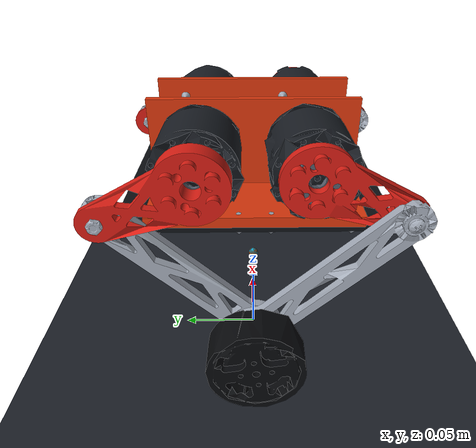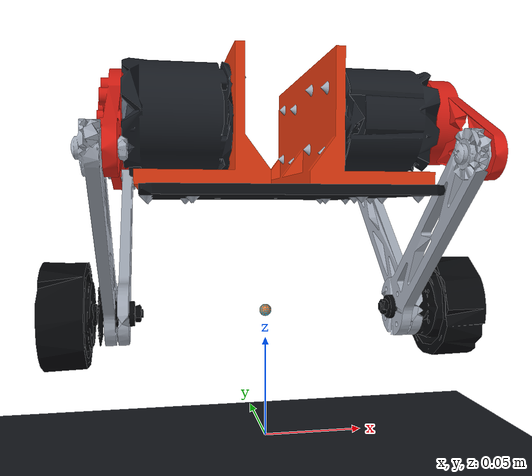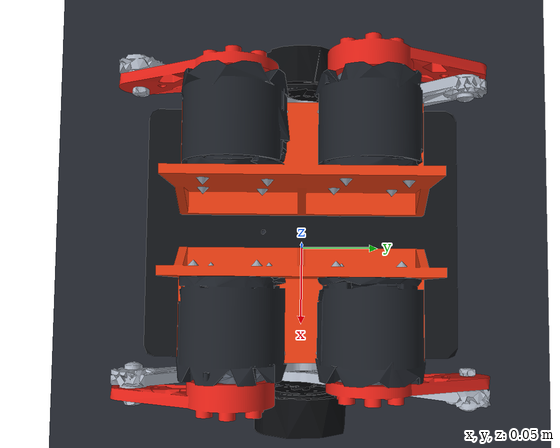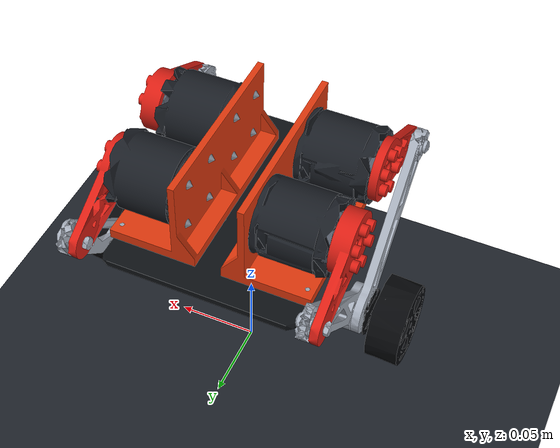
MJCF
<mujoco model="EduLite wheel-legged robot visual checkpoint">
  <compiler angle="radian" autolimits="true" balanceinertia="true"/>
  <option timestep="0.002" integrator="implicitfast" gravity="0 0 -9.80665"/>
  <size njmax="1000" nconmax="400"/>
  <visual>
    <global azimuth="135" elevation="-18" offwidth="720" offheight="540"/>
    <headlight ambient="0.35 0.35 0.35" diffuse="0.75 0.75 0.75"
               specular="0.25 0.25 0.25"/>
    <quality shadowsize="4096" offsamples="4"/>
  </visual>
  <default>
    <default class="visual">
      <geom type="mesh" contype="0" conaffinity="0" group="1" density="0"/>
    </default>
    <default class="collision">
      <geom contype="0" conaffinity="0" group="3" density="0" rgba="0.2 0.7 1 0.12"/>
    </default>
  </default>
  <asset>
    <mesh name="baseplate" file="assets/baseplate.obj"/>
    <mesh name="edulite_left_negative_rotor" file="assets/edulite_left_negative_rotor.obj"/>
    <mesh name="edulite_left_negative_stator" file="assets/edulite_left_negative_stator.obj"/>
    <mesh name="edulite_left_positive_rotor" file="assets/edulite_left_positive_rotor.obj"/>
    <mesh name="edulite_left_positive_stator" file="assets/edulite_left_positive_stator.obj"/>
    <mesh name="edulite_right_negative_rotor" file="assets/edulite_right_negative_rotor.obj"/>
    <mesh name="edulite_right_negative_stator" file="assets/edulite_right_negative_stator.obj"/>
    <mesh name="edulite_right_positive_rotor" file="assets/edulite_right_positive_rotor.obj"/>
    <mesh name="edulite_right_positive_stator" file="assets/edulite_right_positive_stator.obj"/>
    <mesh name="fixed_fasteners" file="assets/fixed_fasteners.obj"/>
    <mesh name="left_bracket" file="assets/left_bracket.obj"/>
    <mesh name="left_distal_negative" file="assets/left_distal_negative.obj"/>
    <mesh name="left_distal_positive" file="assets/left_distal_positive.obj"/>
    <mesh name="left_proximal_negative" file="assets/left_proximal_negative.obj"/>
    <mesh name="left_proximal_positive" file="assets/left_proximal_positive.obj"/>
    <mesh name="left_wheel" file="assets/left_wheel.obj"/>
    <mesh name="right_bracket" file="assets/right_bracket.obj"/>
    <mesh name="right_distal_negative" file="assets/right_distal_negative.obj"/>
    <mesh name="right_distal_positive" file="assets/right_distal_positive.obj"/>
    <mesh name="right_proximal_negative" file="assets/right_proximal_negative.obj"/>
    <mesh name="right_proximal_positive" file="assets/right_proximal_positive.obj"/>
    <mesh name="right_wheel" file="assets/right_wheel.obj"/>
    <material name="carbon" rgba="0.055 0.065 0.08 1" metallic="0.45" roughness="0.38"/>
    <material name="bracket" rgba="0.88 0.22 0.055 1" metallic="0.35" roughness="0.3"/>
    <material name="motor" rgba="0.10 0.115 0.14 1" metallic="0.7" roughness="0.24"/>
    <material name="rotor" rgba="0.33 0.36 0.41 1" metallic="0.8" roughness="0.2"/>
    <material name="active_link" rgba="0.86 0.12 0.08 1"
              metallic="0.65" roughness="0.25"/>
    <material name="passive_link" rgba="0.66 0.69 0.74 1"
              metallic="0.8" roughness="0.22"/>
    <material name="steel" rgba="0.62 0.65 0.70 1" metallic="0.9" roughness="0.16"/>
    <material name="tire" rgba="0.025 0.03 0.04 1" metallic="0.05" roughness="0.78"/>
    <texture name="ground_tex" type="2d" builtin="checker" rgb1="0.16 0.18 0.22"
             rgb2="0.08 0.09 0.11" width="512" height="512"/>
    <material name="ground" texture="ground_tex" texrepeat="4 4"
              reflectance="0.12" roughness="0.72"/>
  </asset>
  <worldbody>
    <light pos="0 -0.5 1.2" dir="0 0.4 -1" diffuse="0.9 0.88 0.84" castshadow="true"/>
    <light pos="-0.7 0.4 0.6" dir="0.7 -0.2 -0.5" diffuse="0.35 0.42 0.55"/>
    <geom name="display_floor" type="plane" pos="0 0 -0.04" size="1.5 1.5 0.05"
          material="ground" contype="0" conaffinity="0"/>
    <body name="chassis" pos="0 0 0.12">
      <inertial pos="0 0.005 0" mass="1.9" diaginertia="0.012 0.018 0.02"/>
      <geom class="visual" mesh="baseplate" material="carbon"/>
      <geom class="visual" mesh="left_bracket" material="bracket"/>
      <geom class="visual" mesh="right_bracket" material="bracket"/>
      <geom class="visual" mesh="fixed_fasteners" material="steel"/>
      <geom class="visual" mesh="edulite_left_negative_stator" material="motor"/>
      <geom class="visual" mesh="edulite_left_positive_stator" material="motor"/>
      <geom class="visual" mesh="edulite_right_negative_stator" material="motor"/>
      <geom class="visual" mesh="edulite_right_positive_stator" material="motor"/>

      <body name="left_proximal_negative" pos="0 -0.03 0.034"
            quat="0.1848511965 -0.9827665212 0 0">
        <inertial pos="0 0.025 0" mass="0.05" diaginertia="2e-5 1e-5 2e-5"/>
        <joint name="left_hip_negative" type="hinge" axis="1 0 0"
               range="-0.8 0.8" damping="0.05"/>
        <geom class="visual" mesh="left_proximal_negative" material="active_link"/>
        <geom class="visual" mesh="edulite_left_negative_rotor" material="rotor"/>
        <geom class="collision" type="capsule" fromto="0 0 0 0 0.05 0" size="0.009"/>
        <body name="left_distal_negative" pos="0 0.05 6.938893904e-18"
              quat="0.5334077329 0.8458582567 0 0">
          <inertial pos="0 0.0525 0" mass="0.04" diaginertia="4e-5 5e-6 4e-5"/>
          <joint name="left_knee_negative" type="hinge" axis="1 0 0"
                 range="-0.5 0.5" damping="0.03"/>
          <geom class="visual" mesh="left_distal_negative" material="passive_link"/>
          <geom class="collision" type="capsule" fromto="0 0 0 0 0.105 0" size="0.007"/>
          <body name="left_wheel" pos="0 0.105 0"
                quat="0.929882234 0.3678573513 0 0">
            <inertial pos="0 0 0" mass="0.12" diaginertia="4e-5 7e-5 7e-5"/>
            <joint name="left_wheel_spin" type="hinge" axis="1 0 0" damping="0.01"/>
            <geom class="visual" mesh="left_wheel" material="tire"/>
            <geom class="collision" type="cylinder" size="0.0257 0.023"
                  quat="0.70710678 0.70710678 0 0"/>
            <site name="left_wheel_center" size="0.003" rgba="0.1 0.8 1 0.8"/>
          </body>
        </body>
      </body>
      <body name="left_proximal_positive" pos="0 0.03 0.034"
            quat="0.9827665212 -0.1848511965 0 0">
        <inertial pos="0 0.025 0" mass="0.05" diaginertia="2e-5 1e-5 2e-5"/>
        <joint name="left_hip_positive" type="hinge" axis="1 0 0"
               range="-0.8 0.8" damping="0.05"/>
        <geom class="visual" mesh="left_proximal_positive" material="active_link"/>
        <geom class="visual" mesh="edulite_left_positive_rotor" material="rotor"/>
        <geom class="collision" type="capsule" fromto="0 0 0 0 0.05 0" size="0.009"/>
        <body name="left_distal_positive" pos="0 0.05 -3.469446952e-18"
              quat="0.5334077329 -0.8458582567 0 0">
          <inertial pos="0 0.0525 0" mass="0.04" diaginertia="4e-5 5e-6 4e-5"/>
          <joint name="left_knee_positive" type="hinge" axis="1 0 0"
                 range="-0.5 0.5" damping="0.03"/>
          <geom class="visual" mesh="left_distal_positive" material="passive_link"/>
          <geom class="collision" type="capsule" fromto="0 0 0 0 0.105 0" size="0.007"/>
          <site name="left_closure" pos="0 0.105 0" size="0.003"
                rgba="1 0.45 0.1 0.8"/>
        </body>
      </body>

      <body name="right_proximal_negative" pos="0 -0.03 0.034"
            quat="0.1848511965 -0.9827665212 0 0">
        <inertial pos="0 0.025 0" mass="0.05" diaginertia="2e-5 1e-5 2e-5"/>
        <joint name="right_hip_negative" type="hinge" axis="1 0 0"
               range="-0.8 0.8" damping="0.05"/>
        <geom class="visual" mesh="right_proximal_negative" material="active_link"/>
        <geom class="visual" mesh="edulite_right_negative_rotor" material="rotor"/>
        <geom class="collision" type="capsule" fromto="0 0 0 0 0.05 0" size="0.009"/>
        <body name="right_distal_negative" pos="0 0.05 6.938893904e-18"
              quat="0.5334077329 0.8458582567 0 0">
          <inertial pos="0 0.0525 0" mass="0.04" diaginertia="4e-5 5e-6 4e-5"/>
          <joint name="right_knee_negative" type="hinge" axis="1 0 0"
                 range="-0.5 0.5" damping="0.03"/>
          <geom class="visual" mesh="right_distal_negative" material="passive_link"/>
          <geom class="collision" type="capsule" fromto="0 0 0 0 0.105 0" size="0.007"/>
          <body name="right_wheel" pos="0 0.105 0"
                quat="0.929882234 0.3678573513 0 0">
            <inertial pos="0 0 0" mass="0.12" diaginertia="4e-5 7e-5 7e-5"/>
            <joint name="right_wheel_spin" type="hinge" axis="1 0 0" damping="0.01"/>
            <geom class="visual" mesh="right_wheel" material="tire"/>
            <geom class="collision" type="cylinder" size="0.0257 0.023"
                  quat="0.70710678 0.70710678 0 0"/>
            <site name="right_wheel_center" size="0.003" rgba="0.1 0.8 1 0.8"/>
          </body>
        </body>
      </body>
      <body name="right_proximal_positive" pos="0 0.03 0.034"
            quat="0.9827665212 -0.1848511965 0 0">
        <inertial pos="0 0.025 0" mass="0.05" diaginertia="2e-5 1e-5 2e-5"/>
        <joint name="right_hip_positive" type="hinge" axis="1 0 0"
               range="-0.8 0.8" damping="0.05"/>
        <geom class="visual" mesh="right_proximal_positive" material="active_link"/>
        <geom class="visual" mesh="edulite_right_positive_rotor" material="rotor"/>
        <geom class="collision" type="capsule" fromto="0 0 0 0 0.05 0" size="0.009"/>
        <body name="right_distal_positive" pos="0 0.05 -3.469446952e-18"
              quat="0.5334077329 -0.8458582567 0 0">
          <inertial pos="0 0.0525 0" mass="0.04" diaginertia="4e-5 5e-6 4e-5"/>
          <joint name="right_knee_positive" type="hinge" axis="1 0 0"
                 range="-0.5 0.5" damping="0.03"/>
          <geom class="visual" mesh="right_distal_positive" material="passive_link"/>
          <geom class="collision" type="capsule" fromto="0 0 0 0 0.105 0" size="0.007"/>
          <site name="right_closure" pos="0 0.105 0" size="0.003"
                rgba="1 0.45 0.1 0.8"/>
        </body>
      </body>
    </body>
    <camera name="overview" pos="0.31 -0.31 0.235"
            xyaxes="0.707 0.707 0 -0.28 0.28 0.918"/>
    <camera name="front" pos="0.38 0 0.14" xyaxes="0 1 0 -0.2 0 0.98"/>
    <camera name="side" pos="0 -0.40 0.15" xyaxes="1 0 0 0 0.2 0.98"/>
  </worldbody>
  <equality>
    <connect name="left_fivebar_closure" site1="left_closure" site2="left_wheel_center"
             solref="0.004 1" solimp="0.95 0.99 0.001"/>
    <connect name="right_fivebar_closure" site1="right_closure"
             site2="right_wheel_center"
             solref="0.004 1" solimp="0.95 0.99 0.001"/>
  </equality>
</mujoco>
